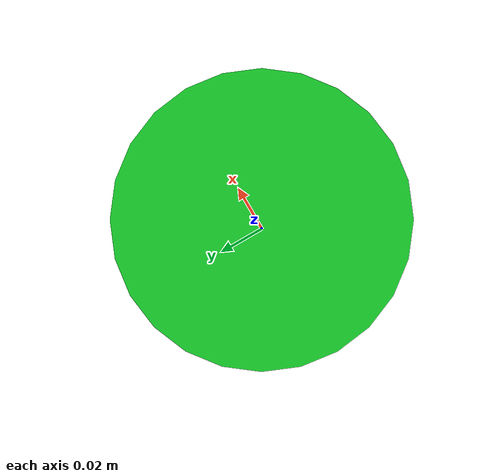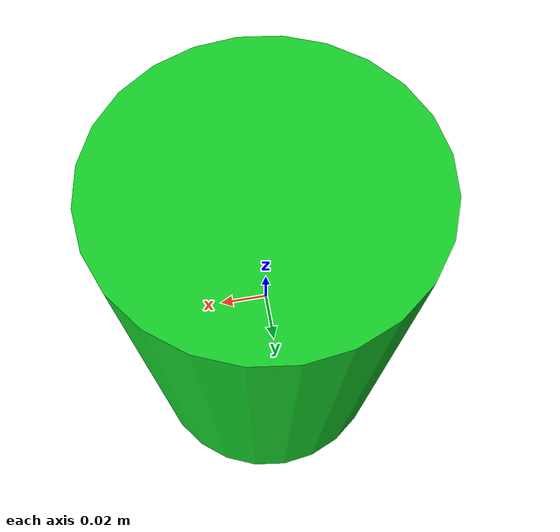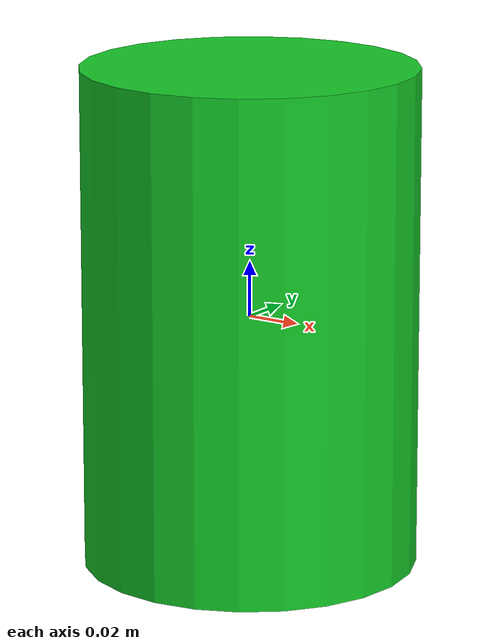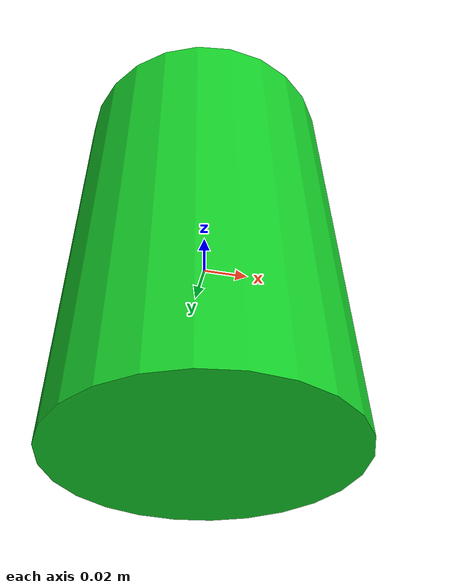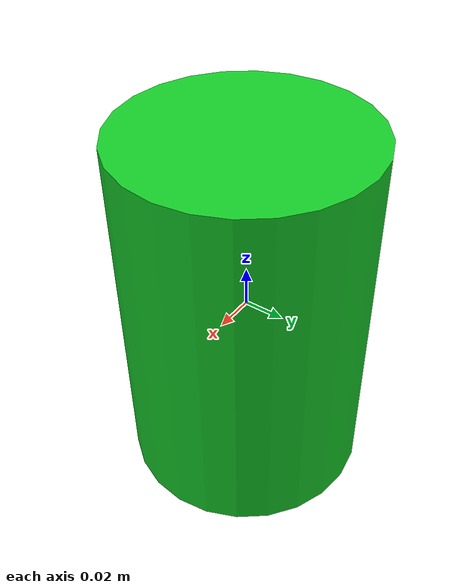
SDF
<?xml version="1.0"?>
<sdf version="1.7">
  <model name="target_green_cylinder">
    <static>true</static>
    <link name="link">
      <visual name="visual">
        <geometry>
          <cylinder>
            <radius>0.06</radius>
            <length>0.18</length>
          </cylinder>
        </geometry>
        <material>
          <ambient>0.05 0.65 0.12 1</ambient>
          <diffuse>0.08 0.8 0.16 1</diffuse>
        </material>
      </visual>
      <collision name="collision">
        <geometry>
          <cylinder>
            <radius>0.06</radius>
            <length>0.18</length>
          </cylinder>
        </geometry>
      </collision>
    </link>
  </model>
</sdf>
